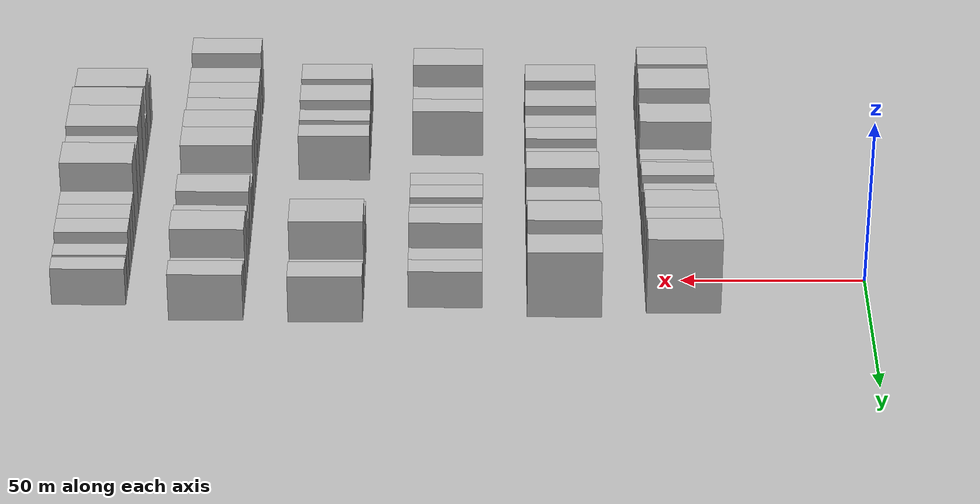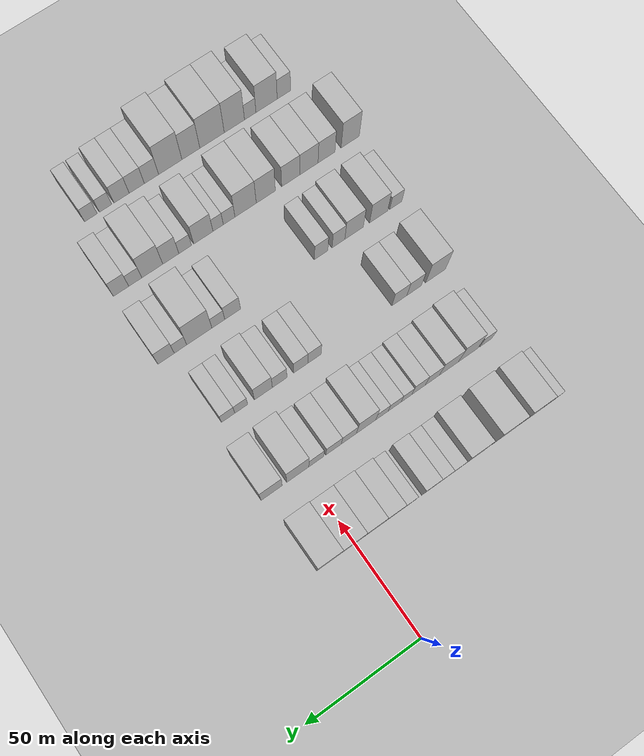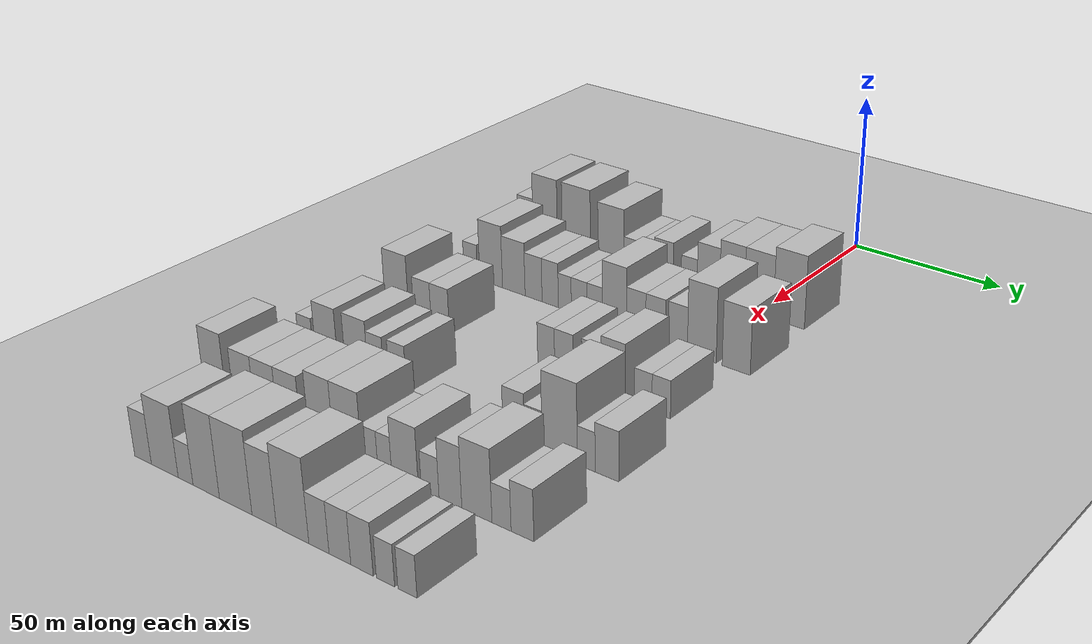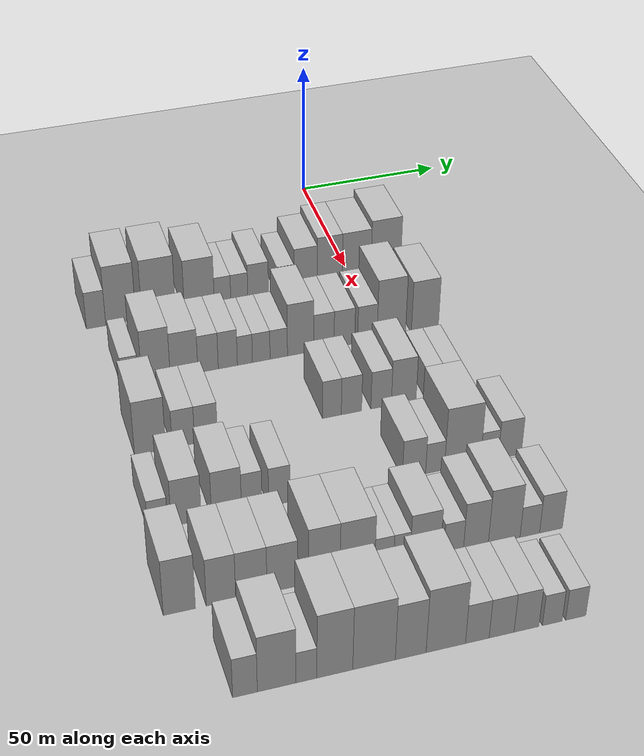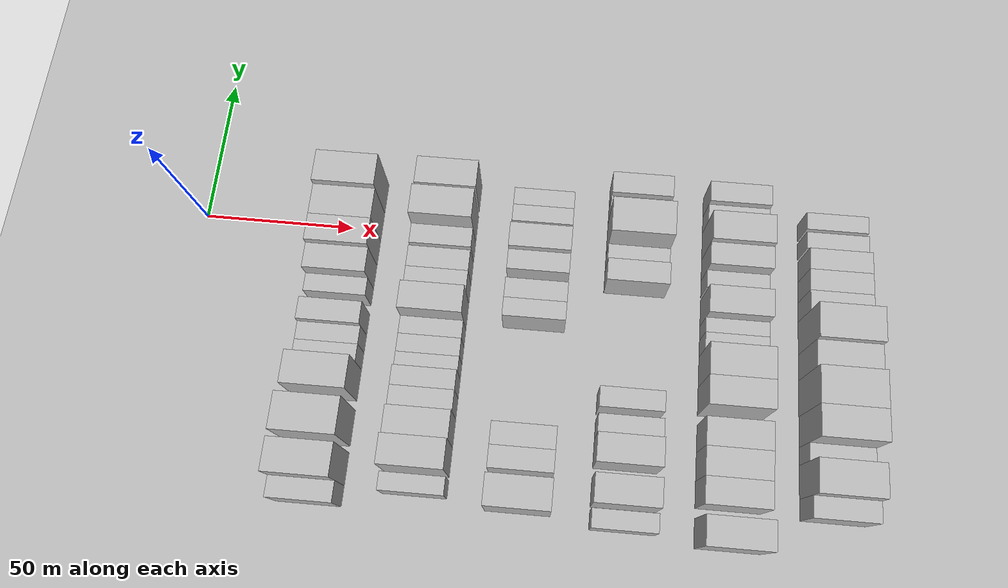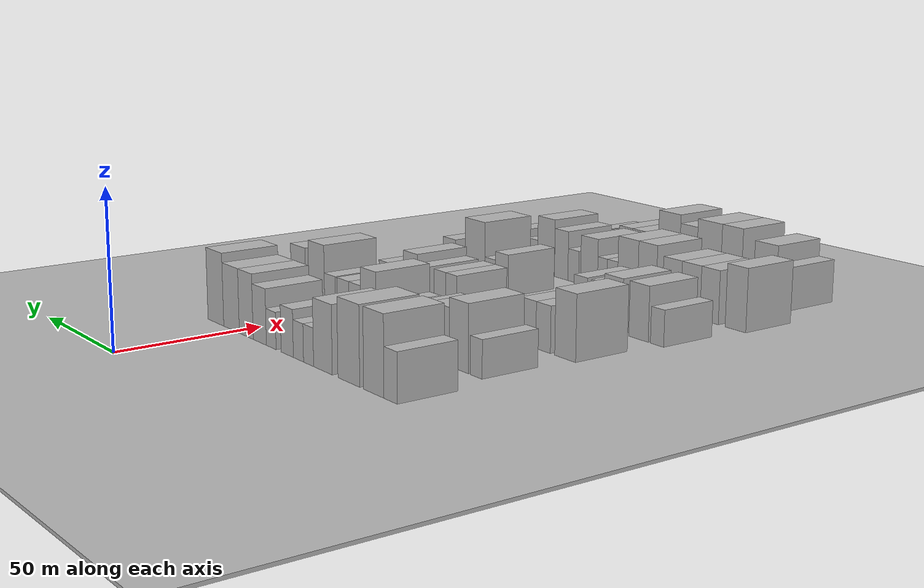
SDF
<sdf version="1.6">
 <world name="default">
  <include><name>ground_plane_1</name><uri>model://HANNAS_ground_plane</uri></include>
  <include>
   <name>ground_plane_2</name>
   <uri>model://HANNAS_ground_plane</uri>
   <pose>100 0 0  0 0 0</pose>
  </include>
  <model name="building_46">
   <static>1</static>
   <pose>50.0000 -88.4714 0 0.000000 0.000000 0.000000</pose>
   <link name="link">
    <pose>0 0 7.50 0 0 0</pose>
    <collision name="collision"><geometry><box><size>20.0000 6.4261 15.0000</size></box></geometry></collision>
    <visual name="visual">
     <cast_shadows>0</cast_shadows>
     <geometry><box><size>20.0000 6.4261 15.0000</size></box></geometry>
     <material>
      <script>
       <uri>model://HANNAS_wall/materials/scripts</uri>
       <uri>model://HANNAS_wall/materials/textures</uri>
       <name>vrc/HANNAS_wall</name>
      </script>
     </material>
    </visual>
   </link>
  </model>
  <model name="building_47">
   <static>1</static>
   <pose>50.0000 -80.2179 0 0.000000 0.000000 0.000000</pose>
   <link name="link">
    <pose>0 0 12.00 0 0 0</pose>
    <collision name="collision"><geometry><box><size>20.0000 10.0809 24.0000</size></box></geometry></collision>
    <visual name="visual">
     <cast_shadows>0</cast_shadows>
     <geometry><box><size>20.0000 10.0809 24.0000</size></box></geometry>
     <material>
      <script>
       <uri>model://HANNAS_wall/materials/scripts</uri>
       <uri>model://HANNAS_wall/materials/textures</uri>
       <name>vrc/HANNAS_wall</name>
      </script>
     </material>
    </visual>
   </link>
  </model>
  <model name="building_48">
   <static>1</static>
   <pose>50.0000 -67.5107 0 0.000000 0.000000 0.000000</pose>
   <link name="link">
    <pose>0 0 12.00 0 0 0</pose>
    <collision name="collision"><geometry><box><size>20.0000 11.3334 24.0000</size></box></geometry></collision>
    <visual name="visual">
     <cast_shadows>0</cast_shadows>
     <geometry><box><size>20.0000 11.3334 24.0000</size></box></geometry>
     <material>
      <script>
       <uri>model://HANNAS_wall/materials/scripts</uri>
       <uri>model://HANNAS_wall/materials/textures</uri>
       <name>vrc/HANNAS_wall</name>
      </script>
     </material>
    </visual>
   </link>
  </model>
  <model name="building_49">
   <static>1</static>
   <pose>50.0000 -53.7334 0 0.000000 0.000000 0.000000</pose>
   <link name="link">
    <pose>0 0 10.50 0 0 0</pose>
    <collision name="collision"><geometry><box><size>20.0000 10.2211 21.0000</size></box></geometry></collision>
    <visual name="visual">
     <cast_shadows>0</cast_shadows>
     <geometry><box><size>20.0000 10.2211 21.0000</size></box></geometry>
     <material>
      <script>
       <uri>model://HANNAS_wall/materials/scripts</uri>
       <uri>model://HANNAS_wall/materials/textures</uri>
       <name>vrc/HANNAS_wall</name>
      </script>
     </material>
    </visual>
   </link>
  </model>
  <model name="building_50">
   <static>1</static>
   <pose>50.0000 -45.8077 0 0.000000 0.000000 0.000000</pose>
   <link name="link">
    <pose>0 0 6.00 0 0 0</pose>
    <collision name="collision"><geometry><box><size>20.0000 5.6304 12.0000</size></box></geometry></collision>
    <visual name="visual">
     <cast_shadows>0</cast_shadows>
     <geometry><box><size>20.0000 5.6304 12.0000</size></box></geometry>
     <material>
      <script>
       <uri>model://HANNAS_wall/materials/scripts</uri>
       <uri>model://HANNAS_wall/materials/textures</uri>
       <name>vrc/HANNAS_wall</name>
      </script>
     </material>
    </visual>
   </link>
  </model>
  <model name="building_51">
   <static>1</static>
   <pose>50.0000 -40.0720 0 0.000000 0.000000 0.000000</pose>
   <link name="link">
    <pose>0 0 6.00 0 0 0</pose>
    <collision name="collision"><geometry><box><size>20.0000 5.8410 12.0000</size></box></geometry></collision>
    <visual name="visual">
     <cast_shadows>0</cast_shadows>
     <geometry><box><size>20.0000 5.8410 12.0000</size></box></geometry>
     <material>
      <script>
       <uri>model://HANNAS_wall/materials/scripts</uri>
       <uri>model://HANNAS_wall/materials/textures</uri>
       <name>vrc/HANNAS_wall</name>
      </script>
     </material>
    </visual>
   </link>
  </model>
  <model name="building_52">
   <static>1</static>
   <pose>50.0000 -33.5710 0 0.000000 0.000000 0.000000</pose>
   <link name="link">
    <pose>0 0 7.50 0 0 0</pose>
    <collision name="collision"><geometry><box><size>20.0000 7.1611 15.0000</size></box></geometry></collision>
    <visual name="visual">
     <cast_shadows>0</cast_shadows>
     <geometry><box><size>20.0000 7.1611 15.0000</size></box></geometry>
     <material>
      <script>
       <uri>model://HANNAS_wall/materials/scripts</uri>
       <uri>model://HANNAS_wall/materials/textures</uri>
       <name>vrc/HANNAS_wall</name>
      </script>
     </material>
    </visual>
   </link>
  </model>
  <model name="building_53">
   <static>1</static>
   <pose>50.0000 -24.0598 0 0.000000 0.000000 0.000000</pose>
   <link name="link">
    <pose>0 0 6.00 0 0 0</pose>
    <collision name="collision"><geometry><box><size>20.0000 5.8613 12.0000</size></box></geometry></collision>
    <visual name="visual">
     <cast_shadows>0</cast_shadows>
     <geometry><box><size>20.0000 5.8613 12.0000</size></box></geometry>
     <material>
      <script>
       <uri>model://HANNAS_wall/materials/scripts</uri>
       <uri>model://HANNAS_wall/materials/textures</uri>
       <name>vrc/HANNAS_wall</name>
      </script>
     </material>
    </visual>
   </link>
  </model>
  <model name="building_54">
   <static>1</static>
   <pose>50.0000 -17.0551 0 0.000000 0.000000 0.000000</pose>
   <link name="link">
    <pose>0 0 9.00 0 0 0</pose>
    <collision name="collision"><geometry><box><size>20.0000 8.1479 18.0000</size></box></geometry></collision>
    <visual name="visual">
     <cast_shadows>0</cast_shadows>
     <geometry><box><size>20.0000 8.1479 18.0000</size></box></geometry>
     <material>
      <script>
       <uri>model://HANNAS_wall/materials/scripts</uri>
       <uri>model://HANNAS_wall/materials/textures</uri>
       <name>vrc/HANNAS_wall</name>
      </script>
     </material>
    </visual>
   </link>
  </model>
  <model name="building_55">
   <static>1</static>
   <pose>50.0000 -8.5782 0 0.000000 0.000000 0.000000</pose>
   <link name="link">
    <pose>0 0 10.50 0 0 0</pose>
    <collision name="collision"><geometry><box><size>20.0000 8.8060 21.0000</size></box></geometry></collision>
    <visual name="visual">
     <cast_shadows>0</cast_shadows>
     <geometry><box><size>20.0000 8.8060 21.0000</size></box></geometry>
     <material>
      <script>
       <uri>model://HANNAS_wall/materials/scripts</uri>
       <uri>model://HANNAS_wall/materials/textures</uri>
       <name>vrc/HANNAS_wall</name>
      </script>
     </material>
    </visual>
   </link>
  </model>
  <model name="building_56">
   <static>1</static>
   <pose>50.0000 0.9289 0 0.000000 0.000000 0.000000</pose>
   <link name="link">
    <pose>0 0 10.50 0 0 0</pose>
    <collision name="collision"><geometry><box><size>20.0000 10.2083 21.0000</size></box></geometry></collision>
    <visual name="visual">
     <cast_shadows>0</cast_shadows>
     <geometry><box><size>20.0000 10.2083 21.0000</size></box></geometry>
     <material>
      <script>
       <uri>model://HANNAS_wall/materials/scripts</uri>
       <uri>model://HANNAS_wall/materials/textures</uri>
       <name>vrc/HANNAS_wall</name>
      </script>
     </material>
    </visual>
   </link>
  </model>
  <model name="building_57">
   <static>1</static>
   <pose>50.0000 11.3432 0 0.000000 0.000000 0.000000</pose>
   <link name="link">
    <pose>0 0 12.00 0 0 0</pose>
    <collision name="collision"><geometry><box><size>20.0000 10.6203 24.0000</size></box></geometry></collision>
    <visual name="visual">
     <cast_shadows>0</cast_shadows>
     <geometry><box><size>20.0000 10.6203 24.0000</size></box></geometry>
     <material>
      <script>
       <uri>model://HANNAS_wall/materials/scripts</uri>
       <uri>model://HANNAS_wall/materials/textures</uri>
       <name>vrc/HANNAS_wall</name>
      </script>
     </material>
    </visual>
   </link>
  </model>
  <model name="building_160">
   <static>1</static>
   <pose>82.0000 -83.8502 0 0.000000 0.000000 0.000000</pose>
   <link name="link">
    <pose>0 0 6.00 0 0 0</pose>
    <collision name="collision"><geometry><box><size>20.0000 5.5557 12.0000</size></box></geometry></collision>
    <visual name="visual">
     <cast_shadows>0</cast_shadows>
     <geometry><box><size>20.0000 5.5557 12.0000</size></box></geometry>
     <material>
      <script>
       <uri>model://HANNAS_wall/materials/scripts</uri>
       <uri>model://HANNAS_wall/materials/textures</uri>
       <name>vrc/HANNAS_wall</name>
      </script>
     </material>
    </visual>
   </link>
  </model>
  <model name="building_161">
   <static>1</static>
   <pose>82.0000 -75.5065 0 0.000000 0.000000 0.000000</pose>
   <link name="link">
    <pose>0 0 10.50 0 0 0</pose>
    <collision name="collision"><geometry><box><size>20.0000 9.1316 21.0000</size></box></geometry></collision>
    <visual name="visual">
     <cast_shadows>0</cast_shadows>
     <geometry><box><size>20.0000 9.1316 21.0000</size></box></geometry>
     <material>
      <script>
       <uri>model://HANNAS_wall/materials/scripts</uri>
       <uri>model://HANNAS_wall/materials/textures</uri>
       <name>vrc/HANNAS_wall</name>
      </script>
     </material>
    </visual>
   </link>
  </model>
  <model name="building_162">
   <static>1</static>
   <pose>82.0000 -66.4691 0 0.000000 0.000000 0.000000</pose>
   <link name="link">
    <pose>0 0 9.00 0 0 0</pose>
    <collision name="collision"><geometry><box><size>20.0000 8.9432 18.0000</size></box></geometry></collision>
    <visual name="visual">
     <cast_shadows>0</cast_shadows>
     <geometry><box><size>20.0000 8.9432 18.0000</size></box></geometry>
     <material>
      <script>
       <uri>model://HANNAS_wall/materials/scripts</uri>
       <uri>model://HANNAS_wall/materials/textures</uri>
       <name>vrc/HANNAS_wall</name>
      </script>
     </material>
    </visual>
   </link>
  </model>
  <model name="building_163">
   <static>1</static>
   <pose>82.0000 -58.6923 0 0.000000 0.000000 0.000000</pose>
   <link name="link">
    <pose>0 0 7.50 0 0 0</pose>
    <collision name="collision"><geometry><box><size>20.0000 6.6104 15.0000</size></box></geometry></collision>
    <visual name="visual">
     <cast_shadows>0</cast_shadows>
     <geometry><box><size>20.0000 6.6104 15.0000</size></box></geometry>
     <material>
      <script>
       <uri>model://HANNAS_wall/materials/scripts</uri>
       <uri>model://HANNAS_wall/materials/textures</uri>
       <name>vrc/HANNAS_wall</name>
      </script>
     </material>
    </visual>
   </link>
  </model>
  <model name="building_164">
   <static>1</static>
   <pose>82.0000 -52.2561 0 0.000000 0.000000 0.000000</pose>
   <link name="link">
    <pose>0 0 7.50 0 0 0</pose>
    <collision name="collision"><geometry><box><size>20.0000 6.2621 15.0000</size></box></geometry></collision>
    <visual name="visual">
     <cast_shadows>0</cast_shadows>
     <geometry><box><size>20.0000 6.2621 15.0000</size></box></geometry>
     <material>
      <script>
       <uri>model://HANNAS_wall/materials/scripts</uri>
       <uri>model://HANNAS_wall/materials/textures</uri>
       <name>vrc/HANNAS_wall</name>
      </script>
     </material>
    </visual>
   </link>
  </model>
  <model name="building_165">
   <static>1</static>
   <pose>82.0000 -46.6575 0 0.000000 0.000000 0.000000</pose>
   <link name="link">
    <pose>0 0 6.00 0 0 0</pose>
    <collision name="collision"><geometry><box><size>20.0000 4.9352 12.0000</size></box></geometry></collision>
    <visual name="visual">
     <cast_shadows>0</cast_shadows>
     <geometry><box><size>20.0000 4.9352 12.0000</size></box></geometry>
     <material>
      <script>
       <uri>model://HANNAS_wall/materials/scripts</uri>
       <uri>model://HANNAS_wall/materials/textures</uri>
       <name>vrc/HANNAS_wall</name>
      </script>
     </material>
    </visual>
   </link>
  </model>
  <model name="building_166">
   <static>1</static>
   <pose>82.0000 -41.2710 0 0.000000 0.000000 0.000000</pose>
   <link name="link">
    <pose>0 0 6.00 0 0 0</pose>
    <collision name="collision"><geometry><box><size>20.0000 5.8378 12.0000</size></box></geometry></collision>
    <visual name="visual">
     <cast_shadows>0</cast_shadows>
     <geometry><box><size>20.0000 5.8378 12.0000</size></box></geometry>
     <material>
      <script>
       <uri>model://HANNAS_wall/materials/scripts</uri>
       <uri>model://HANNAS_wall/materials/textures</uri>
       <name>vrc/HANNAS_wall</name>
      </script>
     </material>
    </visual>
   </link>
  </model>
  <model name="building_167">
   <static>1</static>
   <pose>82.0000 -35.4767 0 0.000000 0.000000 0.000000</pose>
   <link name="link">
    <pose>0 0 6.00 0 0 0</pose>
    <collision name="collision"><geometry><box><size>20.0000 5.7508 12.0000</size></box></geometry></collision>
    <visual name="visual">
     <cast_shadows>0</cast_shadows>
     <geometry><box><size>20.0000 5.7508 12.0000</size></box></geometry>
     <material>
      <script>
       <uri>model://HANNAS_wall/materials/scripts</uri>
       <uri>model://HANNAS_wall/materials/textures</uri>
       <name>vrc/HANNAS_wall</name>
      </script>
     </material>
    </visual>
   </link>
  </model>
  <model name="building_168">
   <static>1</static>
   <pose>82.0000 -28.2259 0 0.000000 0.000000 0.000000</pose>
   <link name="link">
    <pose>0 0 10.50 0 0 0</pose>
    <collision name="collision"><geometry><box><size>20.0000 8.7509 21.0000</size></box></geometry></collision>
    <visual name="visual">
     <cast_shadows>0</cast_shadows>
     <geometry><box><size>20.0000 8.7509 21.0000</size></box></geometry>
     <material>
      <script>
       <uri>model://HANNAS_wall/materials/scripts</uri>
       <uri>model://HANNAS_wall/materials/textures</uri>
       <name>vrc/HANNAS_wall</name>
      </script>
     </material>
    </visual>
   </link>
  </model>
  <model name="building_169">
   <static>1</static>
   <pose>82.0000 -20.4179 0 0.000000 0.000000 0.000000</pose>
   <link name="link">
    <pose>0 0 7.50 0 0 0</pose>
    <collision name="collision"><geometry><box><size>20.0000 6.8651 15.0000</size></box></geometry></collision>
    <visual name="visual">
     <cast_shadows>0</cast_shadows>
     <geometry><box><size>20.0000 6.8651 15.0000</size></box></geometry>
     <material>
      <script>
       <uri>model://HANNAS_wall/materials/scripts</uri>
       <uri>model://HANNAS_wall/materials/textures</uri>
       <name>vrc/HANNAS_wall</name>
      </script>
     </material>
    </visual>
   </link>
  </model>
  <model name="building_170">
   <static>1</static>
   <pose>82.0000 -13.4950 0 0.000000 0.000000 0.000000</pose>
   <link name="link">
    <pose>0 0 7.50 0 0 0</pose>
    <collision name="collision"><geometry><box><size>20.0000 6.9807 15.0000</size></box></geometry></collision>
    <visual name="visual">
     <cast_shadows>0</cast_shadows>
     <geometry><box><size>20.0000 6.9807 15.0000</size></box></geometry>
     <material>
      <script>
       <uri>model://HANNAS_wall/materials/scripts</uri>
       <uri>model://HANNAS_wall/materials/textures</uri>
       <name>vrc/HANNAS_wall</name>
      </script>
     </material>
    </visual>
   </link>
  </model>
  <model name="building_171">
   <static>1</static>
   <pose>82.0000 -5.7097 0 0.000000 0.000000 0.000000</pose>
   <link name="link">
    <pose>0 0 7.50 0 0 0</pose>
    <collision name="collision"><geometry><box><size>20.0000 6.5897 15.0000</size></box></geometry></collision>
    <visual name="visual">
     <cast_shadows>0</cast_shadows>
     <geometry><box><size>20.0000 6.5897 15.0000</size></box></geometry>
     <material>
      <script>
       <uri>model://HANNAS_wall/materials/scripts</uri>
       <uri>model://HANNAS_wall/materials/textures</uri>
       <name>vrc/HANNAS_wall</name>
      </script>
     </material>
    </visual>
   </link>
  </model>
  <model name="building_172">
   <static>1</static>
   <pose>82.0000 2.4729 0 0.000000 0.000000 0.000000</pose>
   <link name="link">
    <pose>0 0 12.00 0 0 0</pose>
    <collision name="collision"><geometry><box><size>20.0000 9.7756 24.0000</size></box></geometry></collision>
    <visual name="visual">
     <cast_shadows>0</cast_shadows>
     <geometry><box><size>20.0000 9.7756 24.0000</size></box></geometry>
     <material>
      <script>
       <uri>model://HANNAS_wall/materials/scripts</uri>
       <uri>model://HANNAS_wall/materials/textures</uri>
       <name>vrc/HANNAS_wall</name>
      </script>
     </material>
    </visual>
   </link>
  </model>
  <model name="building_173">
   <static>1</static>
   <pose>82.0000 14.0131 0 0.000000 0.000000 0.000000</pose>
   <link name="link">
    <pose>0 0 10.50 0 0 0</pose>
    <collision name="collision"><geometry><box><size>20.0000 9.3047 21.0000</size></box></geometry></collision>
    <visual name="visual">
     <cast_shadows>0</cast_shadows>
     <geometry><box><size>20.0000 9.3047 21.0000</size></box></geometry>
     <material>
      <script>
       <uri>model://HANNAS_wall/materials/scripts</uri>
       <uri>model://HANNAS_wall/materials/textures</uri>
       <name>vrc/HANNAS_wall</name>
      </script>
     </material>
    </visual>
   </link>
  </model>
  <model name="building_286">
   <static>1</static>
   <pose>114.0000 -84.3756 0 0.000000 0.000000 0.000000</pose>
   <link name="link">
    <pose>0 0 10.50 0 0 0</pose>
    <collision name="collision"><geometry><box><size>20.0000 9.5065 21.0000</size></box></geometry></collision>
    <visual name="visual">
     <cast_shadows>0</cast_shadows>
     <geometry><box><size>20.0000 9.5065 21.0000</size></box></geometry>
     <material>
      <script>
       <uri>model://HANNAS_wall/materials/scripts</uri>
       <uri>model://HANNAS_wall/materials/textures</uri>
       <name>vrc/HANNAS_wall</name>
      </script>
     </material>
    </visual>
   </link>
  </model>
  <model name="building_287">
   <static>1</static>
   <pose>114.0000 -74.1889 0 0.000000 0.000000 0.000000</pose>
   <link name="link">
    <pose>0 0 7.50 0 0 0</pose>
    <collision name="collision"><geometry><box><size>20.0000 6.8668 15.0000</size></box></geometry></collision>
    <visual name="visual">
     <cast_shadows>0</cast_shadows>
     <geometry><box><size>20.0000 6.8668 15.0000</size></box></geometry>
     <material>
      <script>
       <uri>model://HANNAS_wall/materials/scripts</uri>
       <uri>model://HANNAS_wall/materials/textures</uri>
       <name>vrc/HANNAS_wall</name>
      </script>
     </material>
    </visual>
   </link>
  </model>
  <model name="building_288">
   <static>1</static>
   <pose>114.0000 -67.2203 0 0.000000 0.000000 0.000000</pose>
   <link name="link">
    <pose>0 0 7.50 0 0 0</pose>
    <collision name="collision"><geometry><box><size>20.0000 7.0705 15.0000</size></box></geometry></collision>
    <visual name="visual">
     <cast_shadows>0</cast_shadows>
     <geometry><box><size>20.0000 7.0705 15.0000</size></box></geometry>
     <material>
      <script>
       <uri>model://HANNAS_wall/materials/scripts</uri>
       <uri>model://HANNAS_wall/materials/textures</uri>
       <name>vrc/HANNAS_wall</name>
      </script>
     </material>
    </visual>
   </link>
  </model>
  <model name="building_289">
   <static>1</static>
   <pose>114.0000 -27.6535 0 0.000000 0.000000 0.000000</pose>
   <link name="link">
    <pose>0 0 7.50 0 0 0</pose>
    <collision name="collision"><geometry><box><size>20.0000 6.0210 15.0000</size></box></geometry></collision>
    <visual name="visual">
     <cast_shadows>0</cast_shadows>
     <geometry><box><size>20.0000 6.0210 15.0000</size></box></geometry>
     <material>
      <script>
       <uri>model://HANNAS_wall/materials/scripts</uri>
       <uri>model://HANNAS_wall/materials/textures</uri>
       <name>vrc/HANNAS_wall</name>
      </script>
     </material>
    </visual>
   </link>
  </model>
  <model name="building_290">
   <static>1</static>
   <pose>114.0000 -21.3672 0 0.000000 0.000000 0.000000</pose>
   <link name="link">
    <pose>0 0 7.50 0 0 0</pose>
    <collision name="collision"><geometry><box><size>20.0000 6.5518 15.0000</size></box></geometry></collision>
    <visual name="visual">
     <cast_shadows>0</cast_shadows>
     <geometry><box><size>20.0000 6.5518 15.0000</size></box></geometry>
     <material>
      <script>
       <uri>model://HANNAS_wall/materials/scripts</uri>
       <uri>model://HANNAS_wall/materials/textures</uri>
       <name>vrc/HANNAS_wall</name>
      </script>
     </material>
    </visual>
   </link>
  </model>
  <model name="building_291">
   <static>1</static>
   <pose>114.0000 -11.7743 0 0.000000 0.000000 0.000000</pose>
   <link name="link">
    <pose>0 0 7.50 0 0 0</pose>
    <collision name="collision"><geometry><box><size>20.0000 6.6339 15.0000</size></box></geometry></collision>
    <visual name="visual">
     <cast_shadows>0</cast_shadows>
     <geometry><box><size>20.0000 6.6339 15.0000</size></box></geometry>
     <material>
      <script>
       <uri>model://HANNAS_wall/materials/scripts</uri>
       <uri>model://HANNAS_wall/materials/textures</uri>
       <name>vrc/HANNAS_wall</name>
      </script>
     </material>
    </visual>
   </link>
  </model>
  <model name="building_292">
   <static>1</static>
   <pose>114.0000 -4.4179 0 0.000000 0.000000 0.000000</pose>
   <link name="link">
    <pose>0 0 9.00 0 0 0</pose>
    <collision name="collision"><geometry><box><size>20.0000 8.0788 18.0000</size></box></geometry></collision>
    <visual name="visual">
     <cast_shadows>0</cast_shadows>
     <geometry><box><size>20.0000 8.0788 18.0000</size></box></geometry>
     <material>
      <script>
       <uri>model://HANNAS_wall/materials/scripts</uri>
       <uri>model://HANNAS_wall/materials/textures</uri>
       <name>vrc/HANNAS_wall</name>
      </script>
     </material>
    </visual>
   </link>
  </model>
  <model name="building_293">
   <static>1</static>
   <pose>114.0000 5.5087 0 0.000000 0.000000 0.000000</pose>
   <link name="link">
    <pose>0 0 6.00 0 0 0</pose>
    <collision name="collision"><geometry><box><size>20.0000 5.7744 12.0000</size></box></geometry></collision>
    <visual name="visual">
     <cast_shadows>0</cast_shadows>
     <geometry><box><size>20.0000 5.7744 12.0000</size></box></geometry>
     <material>
      <script>
       <uri>model://HANNAS_wall/materials/scripts</uri>
       <uri>model://HANNAS_wall/materials/textures</uri>
       <name>vrc/HANNAS_wall</name>
      </script>
     </material>
    </visual>
   </link>
  </model>
  <model name="building_294">
   <static>1</static>
   <pose>114.0000 11.3791 0 0.000000 0.000000 0.000000</pose>
   <link name="link">
    <pose>0 0 6.00 0 0 0</pose>
    <collision name="collision"><geometry><box><size>20.0000 5.9664 12.0000</size></box></geometry></collision>
    <visual name="visual">
     <cast_shadows>0</cast_shadows>
     <geometry><box><size>20.0000 5.9664 12.0000</size></box></geometry>
     <material>
      <script>
       <uri>model://HANNAS_wall/materials/scripts</uri>
       <uri>model://HANNAS_wall/materials/textures</uri>
       <name>vrc/HANNAS_wall</name>
      </script>
     </material>
    </visual>
   </link>
  </model>
  <model name="building_399">
   <static>1</static>
   <pose>146.0000 -89.1208 0 0.000000 0.000000 0.000000</pose>
   <link name="link">
    <pose>0 0 6.00 0 0 0</pose>
    <collision name="collision"><geometry><box><size>20.0000 5.8059 12.0000</size></box></geometry></collision>
    <visual name="visual">
     <cast_shadows>0</cast_shadows>
     <geometry><box><size>20.0000 5.8059 12.0000</size></box></geometry>
     <material>
      <script>
       <uri>model://HANNAS_wall/materials/scripts</uri>
       <uri>model://HANNAS_wall/materials/textures</uri>
       <name>vrc/HANNAS_wall</name>
      </script>
     </material>
    </visual>
   </link>
  </model>
  <model name="building_400">
   <static>1</static>
   <pose>146.0000 -80.8455 0 0.000000 0.000000 0.000000</pose>
   <link name="link">
    <pose>0 0 9.00 0 0 0</pose>
    <collision name="collision"><geometry><box><size>20.0000 8.7448 18.0000</size></box></geometry></collision>
    <visual name="visual">
     <cast_shadows>0</cast_shadows>
     <geometry><box><size>20.0000 8.7448 18.0000</size></box></geometry>
     <material>
      <script>
       <uri>model://HANNAS_wall/materials/scripts</uri>
       <uri>model://HANNAS_wall/materials/textures</uri>
       <name>vrc/HANNAS_wall</name>
      </script>
     </material>
    </visual>
   </link>
  </model>
  <model name="building_401">
   <static>1</static>
   <pose>146.0000 -69.0709 0 0.000000 0.000000 0.000000</pose>
   <link name="link">
    <pose>0 0 9.00 0 0 0</pose>
    <collision name="collision"><geometry><box><size>20.0000 8.8044 18.0000</size></box></geometry></collision>
    <visual name="visual">
     <cast_shadows>0</cast_shadows>
     <geometry><box><size>20.0000 8.8044 18.0000</size></box></geometry>
     <material>
      <script>
       <uri>model://HANNAS_wall/materials/scripts</uri>
       <uri>model://HANNAS_wall/materials/textures</uri>
       <name>vrc/HANNAS_wall</name>
      </script>
     </material>
    </visual>
   </link>
  </model>
  <model name="building_402">
   <static>1</static>
   <pose>146.0000 -61.6382 0 0.000000 0.000000 0.000000</pose>
   <link name="link">
    <pose>0 0 7.50 0 0 0</pose>
    <collision name="collision"><geometry><box><size>20.0000 6.0610 15.0000</size></box></geometry></collision>
    <visual name="visual">
     <cast_shadows>0</cast_shadows>
     <geometry><box><size>20.0000 6.0610 15.0000</size></box></geometry>
     <material>
      <script>
       <uri>model://HANNAS_wall/materials/scripts</uri>
       <uri>model://HANNAS_wall/materials/textures</uri>
       <name>vrc/HANNAS_wall</name>
      </script>
     </material>
    </visual>
   </link>
  </model>
  <model name="building_403">
   <static>1</static>
   <pose>146.0000 -53.4248 0 0.000000 0.000000 0.000000</pose>
   <link name="link">
    <pose>0 0 7.50 0 0 0</pose>
    <collision name="collision"><geometry><box><size>20.0000 6.3656 15.0000</size></box></geometry></collision>
    <visual name="visual">
     <cast_shadows>0</cast_shadows>
     <geometry><box><size>20.0000 6.3656 15.0000</size></box></geometry>
     <material>
      <script>
       <uri>model://HANNAS_wall/materials/scripts</uri>
       <uri>model://HANNAS_wall/materials/textures</uri>
       <name>vrc/HANNAS_wall</name>
      </script>
     </material>
    </visual>
   </link>
  </model>
  <model name="building_404">
   <static>1</static>
   <pose>146.0000 -12.4037 0 0.000000 0.000000 0.000000</pose>
   <link name="link">
    <pose>0 0 7.50 0 0 0</pose>
    <collision name="collision"><geometry><box><size>20.0000 7.2255 15.0000</size></box></geometry></collision>
    <visual name="visual">
     <cast_shadows>0</cast_shadows>
     <geometry><box><size>20.0000 7.2255 15.0000</size></box></geometry>
     <material>
      <script>
       <uri>model://HANNAS_wall/materials/scripts</uri>
       <uri>model://HANNAS_wall/materials/textures</uri>
       <name>vrc/HANNAS_wall</name>
      </script>
     </material>
    </visual>
   </link>
  </model>
  <model name="building_405">
   <static>1</static>
   <pose>146.0000 -5.8455 0 0.000000 0.000000 0.000000</pose>
   <link name="link">
    <pose>0 0 6.00 0 0 0</pose>
    <collision name="collision"><geometry><box><size>20.0000 5.8910 12.0000</size></box></geometry></collision>
    <visual name="visual">
     <cast_shadows>0</cast_shadows>
     <geometry><box><size>20.0000 5.8910 12.0000</size></box></geometry>
     <material>
      <script>
       <uri>model://HANNAS_wall/materials/scripts</uri>
       <uri>model://HANNAS_wall/materials/textures</uri>
       <name>vrc/HANNAS_wall</name>
      </script>
     </material>
    </visual>
   </link>
  </model>
  <model name="building_406">
   <static>1</static>
   <pose>146.0000 2.7882 0 0.000000 0.000000 0.000000</pose>
   <link name="link">
    <pose>0 0 12.00 0 0 0</pose>
    <collision name="collision"><geometry><box><size>20.0000 11.3763 24.0000</size></box></geometry></collision>
    <visual name="visual">
     <cast_shadows>0</cast_shadows>
     <geometry><box><size>20.0000 11.3763 24.0000</size></box></geometry>
     <material>
      <script>
       <uri>model://HANNAS_wall/materials/scripts</uri>
       <uri>model://HANNAS_wall/materials/textures</uri>
       <name>vrc/HANNAS_wall</name>
      </script>
     </material>
    </visual>
   </link>
  </model>
  <model name="building_407">
   <static>1</static>
   <pose>146.0000 11.2869 0 0.000000 0.000000 0.000000</pose>
   <link name="link">
    <pose>0 0 6.00 0 0 0</pose>
    <collision name="collision"><geometry><box><size>20.0000 5.6211 12.0000</size></box></geometry></collision>
    <visual name="visual">
     <cast_shadows>0</cast_shadows>
     <geometry><box><size>20.0000 5.6211 12.0000</size></box></geometry>
     <material>
      <script>
       <uri>model://HANNAS_wall/materials/scripts</uri>
       <uri>model://HANNAS_wall/materials/textures</uri>
       <name>vrc/HANNAS_wall</name>
      </script>
     </material>
    </visual>
   </link>
  </model>
  <model name="building_408">
   <static>1</static>
   <pose>146.0000 17.7767 0 0.000000 0.000000 0.000000</pose>
   <link name="link">
    <pose>0 0 7.50 0 0 0</pose>
    <collision name="collision"><geometry><box><size>20.0000 7.3586 15.0000</size></box></geometry></collision>
    <visual name="visual">
     <cast_shadows>0</cast_shadows>
     <geometry><box><size>20.0000 7.3586 15.0000</size></box></geometry>
     <material>
      <script>
       <uri>model://HANNAS_wall/materials/scripts</uri>
       <uri>model://HANNAS_wall/materials/textures</uri>
       <name>vrc/HANNAS_wall</name>
      </script>
     </material>
    </visual>
   </link>
  </model>
  <model name="building_518">
   <static>1</static>
   <pose>178.0000 -90.3271 0 0.000000 0.000000 0.000000</pose>
   <link name="link">
    <pose>0 0 10.50 0 0 0</pose>
    <collision name="collision"><geometry><box><size>20.0000 8.8459 21.0000</size></box></geometry></collision>
    <visual name="visual">
     <cast_shadows>0</cast_shadows>
     <geometry><box><size>20.0000 8.8459 21.0000</size></box></geometry>
     <material>
      <script>
       <uri>model://HANNAS_wall/materials/scripts</uri>
       <uri>model://HANNAS_wall/materials/textures</uri>
       <name>vrc/HANNAS_wall</name>
      </script>
     </material>
    </visual>
   </link>
  </model>
  <model name="building_519">
   <static>1</static>
   <pose>178.0000 -78.8159 0 0.000000 0.000000 0.000000</pose>
   <link name="link">
    <pose>0 0 9.00 0 0 0</pose>
    <collision name="collision"><geometry><box><size>20.0000 8.1766 18.0000</size></box></geometry></collision>
    <visual name="visual">
     <cast_shadows>0</cast_shadows>
     <geometry><box><size>20.0000 8.1766 18.0000</size></box></geometry>
     <material>
      <script>
       <uri>model://HANNAS_wall/materials/scripts</uri>
       <uri>model://HANNAS_wall/materials/textures</uri>
       <name>vrc/HANNAS_wall</name>
      </script>
     </material>
    </visual>
   </link>
  </model>
  <model name="building_520">
   <static>1</static>
   <pose>178.0000 -70.3541 0 0.000000 0.000000 0.000000</pose>
   <link name="link">
    <pose>0 0 9.00 0 0 0</pose>
    <collision name="collision"><geometry><box><size>20.0000 8.7468 18.0000</size></box></geometry></collision>
    <visual name="visual">
     <cast_shadows>0</cast_shadows>
     <geometry><box><size>20.0000 8.7468 18.0000</size></box></geometry>
     <material>
      <script>
       <uri>model://HANNAS_wall/materials/scripts</uri>
       <uri>model://HANNAS_wall/materials/textures</uri>
       <name>vrc/HANNAS_wall</name>
      </script>
     </material>
    </visual>
   </link>
  </model>
  <model name="building_521">
   <static>1</static>
   <pose>178.0000 -61.6226 0 0.000000 0.000000 0.000000</pose>
   <link name="link">
    <pose>0 0 9.00 0 0 0</pose>
    <collision name="collision"><geometry><box><size>20.0000 8.7163 18.0000</size></box></geometry></collision>
    <visual name="visual">
     <cast_shadows>0</cast_shadows>
     <geometry><box><size>20.0000 8.7163 18.0000</size></box></geometry>
     <material>
      <script>
       <uri>model://HANNAS_wall/materials/scripts</uri>
       <uri>model://HANNAS_wall/materials/textures</uri>
       <name>vrc/HANNAS_wall</name>
      </script>
     </material>
    </visual>
   </link>
  </model>
  <model name="building_522">
   <static>1</static>
   <pose>178.0000 -49.7539 0 0.000000 0.000000 0.000000</pose>
   <link name="link">
    <pose>0 0 10.50 0 0 0</pose>
    <collision name="collision"><geometry><box><size>20.0000 9.0212 21.0000</size></box></geometry></collision>
    <visual name="visual">
     <cast_shadows>0</cast_shadows>
     <geometry><box><size>20.0000 9.0212 21.0000</size></box></geometry>
     <material>
      <script>
       <uri>model://HANNAS_wall/materials/scripts</uri>
       <uri>model://HANNAS_wall/materials/textures</uri>
       <name>vrc/HANNAS_wall</name>
      </script>
     </material>
    </visual>
   </link>
  </model>
  <model name="building_523">
   <static>1</static>
   <pose>178.0000 -40.2201 0 0.000000 0.000000 0.000000</pose>
   <link name="link">
    <pose>0 0 10.50 0 0 0</pose>
    <collision name="collision"><geometry><box><size>20.0000 10.0464 21.0000</size></box></geometry></collision>
    <visual name="visual">
     <cast_shadows>0</cast_shadows>
     <geometry><box><size>20.0000 10.0464 21.0000</size></box></geometry>
     <material>
      <script>
       <uri>model://HANNAS_wall/materials/scripts</uri>
       <uri>model://HANNAS_wall/materials/textures</uri>
       <name>vrc/HANNAS_wall</name>
      </script>
     </material>
    </visual>
   </link>
  </model>
  <model name="building_524">
   <static>1</static>
   <pose>178.0000 -32.4590 0 0.000000 0.000000 0.000000</pose>
   <link name="link">
    <pose>0 0 6.00 0 0 0</pose>
    <collision name="collision"><geometry><box><size>20.0000 5.4758 12.0000</size></box></geometry></collision>
    <visual name="visual">
     <cast_shadows>0</cast_shadows>
     <geometry><box><size>20.0000 5.4758 12.0000</size></box></geometry>
     <material>
      <script>
       <uri>model://HANNAS_wall/materials/scripts</uri>
       <uri>model://HANNAS_wall/materials/textures</uri>
       <name>vrc/HANNAS_wall</name>
      </script>
     </material>
    </visual>
   </link>
  </model>
  <model name="building_525">
   <static>1</static>
   <pose>178.0000 -27.3181 0 0.000000 0.000000 0.000000</pose>
   <link name="link">
    <pose>0 0 6.00 0 0 0</pose>
    <collision name="collision"><geometry><box><size>20.0000 4.8060 12.0000</size></box></geometry></collision>
    <visual name="visual">
     <cast_shadows>0</cast_shadows>
     <geometry><box><size>20.0000 4.8060 12.0000</size></box></geometry>
     <material>
      <script>
       <uri>model://HANNAS_wall/materials/scripts</uri>
       <uri>model://HANNAS_wall/materials/textures</uri>
       <name>vrc/HANNAS_wall</name>
      </script>
     </material>
    </visual>
   </link>
  </model>
  <model name="building_526">
   <static>1</static>
   <pose>178.0000 -20.4354 0 0.000000 0.000000 0.000000</pose>
   <link name="link">
    <pose>0 0 9.00 0 0 0</pose>
    <collision name="collision"><geometry><box><size>20.0000 8.9594 18.0000</size></box></geometry></collision>
    <visual name="visual">
     <cast_shadows>0</cast_shadows>
     <geometry><box><size>20.0000 8.9594 18.0000</size></box></geometry>
     <material>
      <script>
       <uri>model://HANNAS_wall/materials/scripts</uri>
       <uri>model://HANNAS_wall/materials/textures</uri>
       <name>vrc/HANNAS_wall</name>
      </script>
     </material>
    </visual>
   </link>
  </model>
  <model name="building_527">
   <static>1</static>
   <pose>178.0000 -12.0393 0 0.000000 0.000000 0.000000</pose>
   <link name="link">
    <pose>0 0 6.00 0 0 0</pose>
    <collision name="collision"><geometry><box><size>20.0000 5.8327 12.0000</size></box></geometry></collision>
    <visual name="visual">
     <cast_shadows>0</cast_shadows>
     <geometry><box><size>20.0000 5.8327 12.0000</size></box></geometry>
     <material>
      <script>
       <uri>model://HANNAS_wall/materials/scripts</uri>
       <uri>model://HANNAS_wall/materials/textures</uri>
       <name>vrc/HANNAS_wall</name>
      </script>
     </material>
    </visual>
   </link>
  </model>
  <model name="building_528">
   <static>1</static>
   <pose>178.0000 -5.4199 0 0.000000 0.000000 0.000000</pose>
   <link name="link">
    <pose>0 0 9.00 0 0 0</pose>
    <collision name="collision"><geometry><box><size>20.0000 7.4060 18.0000</size></box></geometry></collision>
    <visual name="visual">
     <cast_shadows>0</cast_shadows>
     <geometry><box><size>20.0000 7.4060 18.0000</size></box></geometry>
     <material>
      <script>
       <uri>model://HANNAS_wall/materials/scripts</uri>
       <uri>model://HANNAS_wall/materials/textures</uri>
       <name>vrc/HANNAS_wall</name>
      </script>
     </material>
    </visual>
   </link>
  </model>
  <model name="building_529">
   <static>1</static>
   <pose>178.0000 3.0677 0 0.000000 0.000000 0.000000</pose>
   <link name="link">
    <pose>0 0 10.50 0 0 0</pose>
    <collision name="collision"><geometry><box><size>20.0000 9.5691 21.0000</size></box></geometry></collision>
    <visual name="visual">
     <cast_shadows>0</cast_shadows>
     <geometry><box><size>20.0000 9.5691 21.0000</size></box></geometry>
     <material>
      <script>
       <uri>model://HANNAS_wall/materials/scripts</uri>
       <uri>model://HANNAS_wall/materials/textures</uri>
       <name>vrc/HANNAS_wall</name>
      </script>
     </material>
    </visual>
   </link>
  </model>
  <model name="building_530">
   <static>1</static>
   <pose>178.0000 10.8170 0 0.000000 0.000000 0.000000</pose>
   <link name="link">
    <pose>0 0 6.00 0 0 0</pose>
    <collision name="collision"><geometry><box><size>20.0000 5.9295 12.0000</size></box></geometry></collision>
    <visual name="visual">
     <cast_shadows>0</cast_shadows>
     <geometry><box><size>20.0000 5.9295 12.0000</size></box></geometry>
     <material>
      <script>
       <uri>model://HANNAS_wall/materials/scripts</uri>
       <uri>model://HANNAS_wall/materials/textures</uri>
       <name>vrc/HANNAS_wall</name>
      </script>
     </material>
    </visual>
   </link>
  </model>
  <model name="building_531">
   <static>1</static>
   <pose>178.0000 17.2656 0 0.000000 0.000000 0.000000</pose>
   <link name="link">
    <pose>0 0 7.50 0 0 0</pose>
    <collision name="collision"><geometry><box><size>20.0000 6.9678 15.0000</size></box></geometry></collision>
    <visual name="visual">
     <cast_shadows>0</cast_shadows>
     <geometry><box><size>20.0000 6.9678 15.0000</size></box></geometry>
     <material>
      <script>
       <uri>model://HANNAS_wall/materials/scripts</uri>
       <uri>model://HANNAS_wall/materials/textures</uri>
       <name>vrc/HANNAS_wall</name>
      </script>
     </material>
    </visual>
   </link>
  </model>
  <model name="building_645">
   <static>1</static>
   <pose>210.0000 -80.6370 0 0.000000 0.000000 0.000000</pose>
   <link name="link">
    <pose>0 0 7.50 0 0 0</pose>
    <collision name="collision"><geometry><box><size>20.0000 6.5257 15.0000</size></box></geometry></collision>
    <visual name="visual">
     <cast_shadows>0</cast_shadows>
     <geometry><box><size>20.0000 6.5257 15.0000</size></box></geometry>
     <material>
      <script>
       <uri>model://HANNAS_wall/materials/scripts</uri>
       <uri>model://HANNAS_wall/materials/textures</uri>
       <name>vrc/HANNAS_wall</name>
      </script>
     </material>
    </visual>
   </link>
  </model>
  <model name="building_646">
   <static>1</static>
   <pose>210.0000 -72.2354 0 0.000000 0.000000 0.000000</pose>
   <link name="link">
    <pose>0 0 10.50 0 0 0</pose>
    <collision name="collision"><geometry><box><size>20.0000 10.2774 21.0000</size></box></geometry></collision>
    <visual name="visual">
     <cast_shadows>0</cast_shadows>
     <geometry><box><size>20.0000 10.2774 21.0000</size></box></geometry>
     <material>
      <script>
       <uri>model://HANNAS_wall/materials/scripts</uri>
       <uri>model://HANNAS_wall/materials/textures</uri>
       <name>vrc/HANNAS_wall</name>
      </script>
     </material>
    </visual>
   </link>
  </model>
  <model name="building_647">
   <static>1</static>
   <pose>210.0000 -64.3292 0 0.000000 0.000000 0.000000</pose>
   <link name="link">
    <pose>0 0 6.00 0 0 0</pose>
    <collision name="collision"><geometry><box><size>20.0000 5.5351 12.0000</size></box></geometry></collision>
    <visual name="visual">
     <cast_shadows>0</cast_shadows>
     <geometry><box><size>20.0000 5.5351 12.0000</size></box></geometry>
     <material>
      <script>
       <uri>model://HANNAS_wall/materials/scripts</uri>
       <uri>model://HANNAS_wall/materials/textures</uri>
       <name>vrc/HANNAS_wall</name>
      </script>
     </material>
    </visual>
   </link>
  </model>
  <model name="building_648">
   <static>1</static>
   <pose>210.0000 -56.6989 0 0.000000 0.000000 0.000000</pose>
   <link name="link">
    <pose>0 0 12.00 0 0 0</pose>
    <collision name="collision"><geometry><box><size>20.0000 9.7256 24.0000</size></box></geometry></collision>
    <visual name="visual">
     <cast_shadows>0</cast_shadows>
     <geometry><box><size>20.0000 9.7256 24.0000</size></box></geometry>
     <material>
      <script>
       <uri>model://HANNAS_wall/materials/scripts</uri>
       <uri>model://HANNAS_wall/materials/textures</uri>
       <name>vrc/HANNAS_wall</name>
      </script>
     </material>
    </visual>
   </link>
  </model>
  <model name="building_649">
   <static>1</static>
   <pose>210.0000 -46.0223 0 0.000000 0.000000 0.000000</pose>
   <link name="link">
    <pose>0 0 12.00 0 0 0</pose>
    <collision name="collision"><geometry><box><size>20.0000 11.6276 24.0000</size></box></geometry></collision>
    <visual name="visual">
     <cast_shadows>0</cast_shadows>
     <geometry><box><size>20.0000 11.6276 24.0000</size></box></geometry>
     <material>
      <script>
       <uri>model://HANNAS_wall/materials/scripts</uri>
       <uri>model://HANNAS_wall/materials/textures</uri>
       <name>vrc/HANNAS_wall</name>
      </script>
     </material>
    </visual>
   </link>
  </model>
  <model name="building_650">
   <static>1</static>
   <pose>210.0000 -35.9610 0 0.000000 0.000000 0.000000</pose>
   <link name="link">
    <pose>0 0 10.50 0 0 0</pose>
    <collision name="collision"><geometry><box><size>20.0000 8.4951 21.0000</size></box></geometry></collision>
    <visual name="visual">
     <cast_shadows>0</cast_shadows>
     <geometry><box><size>20.0000 8.4951 21.0000</size></box></geometry>
     <material>
      <script>
       <uri>model://HANNAS_wall/materials/scripts</uri>
       <uri>model://HANNAS_wall/materials/textures</uri>
       <name>vrc/HANNAS_wall</name>
      </script>
     </material>
    </visual>
   </link>
  </model>
  <model name="building_651">
   <static>1</static>
   <pose>210.0000 -26.2259 0 0.000000 0.000000 0.000000</pose>
   <link name="link">
    <pose>0 0 12.00 0 0 0</pose>
    <collision name="collision"><geometry><box><size>20.0000 10.9749 24.0000</size></box></geometry></collision>
    <visual name="visual">
     <cast_shadows>0</cast_shadows>
     <geometry><box><size>20.0000 10.9749 24.0000</size></box></geometry>
     <material>
      <script>
       <uri>model://HANNAS_wall/materials/scripts</uri>
       <uri>model://HANNAS_wall/materials/textures</uri>
       <name>vrc/HANNAS_wall</name>
      </script>
     </material>
    </visual>
   </link>
  </model>
  <model name="building_652">
   <static>1</static>
   <pose>210.0000 -17.4076 0 0.000000 0.000000 0.000000</pose>
   <link name="link">
    <pose>0 0 7.50 0 0 0</pose>
    <collision name="collision"><geometry><box><size>20.0000 6.6617 15.0000</size></box></geometry></collision>
    <visual name="visual">
     <cast_shadows>0</cast_shadows>
     <geometry><box><size>20.0000 6.6617 15.0000</size></box></geometry>
     <material>
      <script>
       <uri>model://HANNAS_wall/materials/scripts</uri>
       <uri>model://HANNAS_wall/materials/textures</uri>
       <name>vrc/HANNAS_wall</name>
      </script>
     </material>
    </visual>
   </link>
  </model>
  <model name="building_653">
   <static>1</static>
   <pose>210.0000 -10.5458 0 0.000000 0.000000 0.000000</pose>
   <link name="link">
    <pose>0 0 7.50 0 0 0</pose>
    <collision name="collision"><geometry><box><size>20.0000 7.0620 15.0000</size></box></geometry></collision>
    <visual name="visual">
     <cast_shadows>0</cast_shadows>
     <geometry><box><size>20.0000 7.0620 15.0000</size></box></geometry>
     <material>
      <script>
       <uri>model://HANNAS_wall/materials/scripts</uri>
       <uri>model://HANNAS_wall/materials/textures</uri>
       <name>vrc/HANNAS_wall</name>
      </script>
     </material>
    </visual>
   </link>
  </model>
  <model name="building_654">
   <static>1</static>
   <pose>210.0000 -3.4712 0 0.000000 0.000000 0.000000</pose>
   <link name="link">
    <pose>0 0 7.50 0 0 0</pose>
    <collision name="collision"><geometry><box><size>20.0000 7.0871 15.0000</size></box></geometry></collision>
    <visual name="visual">
     <cast_shadows>0</cast_shadows>
     <geometry><box><size>20.0000 7.0871 15.0000</size></box></geometry>
     <material>
      <script>
       <uri>model://HANNAS_wall/materials/scripts</uri>
       <uri>model://HANNAS_wall/materials/textures</uri>
       <name>vrc/HANNAS_wall</name>
      </script>
     </material>
    </visual>
   </link>
  </model>
  <model name="building_655">
   <static>1</static>
   <pose>210.0000 3.9136 0 0.000000 0.000000 0.000000</pose>
   <link name="link">
    <pose>0 0 6.00 0 0 0</pose>
    <collision name="collision"><geometry><box><size>20.0000 5.6825 12.0000</size></box></geometry></collision>
    <visual name="visual">
     <cast_shadows>0</cast_shadows>
     <geometry><box><size>20.0000 5.6825 12.0000</size></box></geometry>
     <material>
      <script>
       <uri>model://HANNAS_wall/materials/scripts</uri>
       <uri>model://HANNAS_wall/materials/textures</uri>
       <name>vrc/HANNAS_wall</name>
      </script>
     </material>
    </visual>
   </link>
  </model>
  <model name="building_656">
   <static>1</static>
   <pose>210.0000 10.6737 0 0.000000 0.000000 0.000000</pose>
   <link name="link">
    <pose>0 0 6.00 0 0 0</pose>
    <collision name="collision"><geometry><box><size>20.0000 5.8377 12.0000</size></box></geometry></collision>
    <visual name="visual">
     <cast_shadows>0</cast_shadows>
     <geometry><box><size>20.0000 5.8377 12.0000</size></box></geometry>
     <material>
      <script>
       <uri>model://HANNAS_wall/materials/scripts</uri>
       <uri>model://HANNAS_wall/materials/textures</uri>
       <name>vrc/HANNAS_wall</name>
      </script>
     </material>
    </visual>
   </link>
  </model>
 </world>
</sdf>
